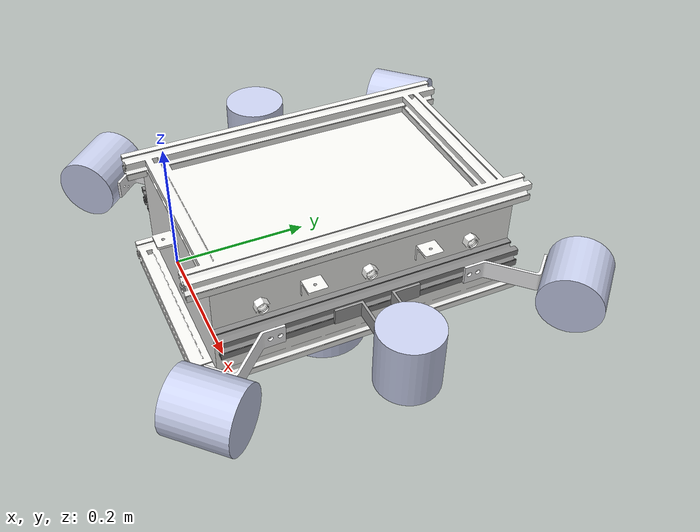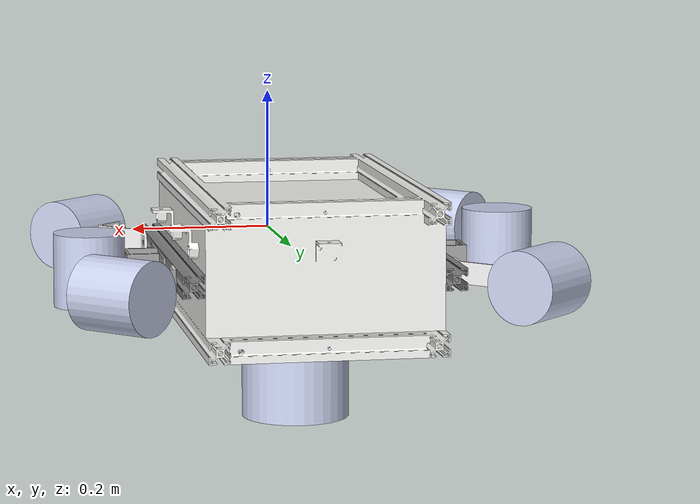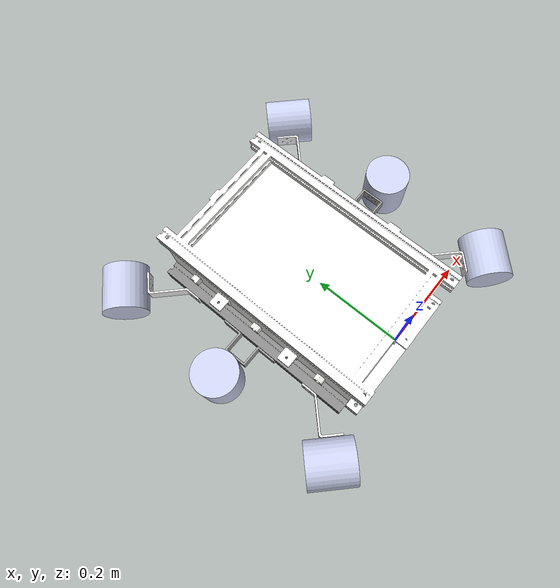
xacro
<?xml version="1.0" encoding="utf-8"?>

<robot
  name="auv">

  <link name="dummy"/>

  <link
    name="base_link">
    <inertial>
      <origin
        xyz="-2.6314E-05 0.235 -0.013828"
        rpy="0 0 0" />
      <mass
        value="6.8795" />
      <inertia
        ixx="0.16825"
        ixy="-6.6195E-09"
        ixz="6.8542E-08"
        iyy="0.084939"
        iyz="1.949E-08"
        izz="0.23517" />
    </inertial>
    <visual>
      <origin
        xyz="0 0 0"
        rpy="0 0 0" />
      <geometry>
        <mesh
          filename="package://auv_simulation/meshes/base_link.STL" />
      </geometry>
      <material
        name="">
        <color
          rgba="0.96471 0.96471 0.95294 1" />
      </material>
    </visual>
    <collision>
      <origin
        xyz="0 0 0"
        rpy="0 0 0" />
      <geometry>
        <mesh
          filename="package://auv_simulation/meshes/base_link_collision.STL" />
      </geometry>
    </collision>
  </link>

  <joint
	name="dummy_joint"
	type="fixed">
	<parent link="dummy"/>
	<child link="base_link"/>
	</joint>

  <link
    name="star_rail">
    <inertial>
      <origin
        xyz="-0.15977 0.002631 -0.23091"
        rpy="0 0 0" />
      <mass
        value="0.15121" />
      <inertia
        ixx="0.0027971"
        ixy="-1.7644E-07"
        ixz="6.1934E-20"
        iyy="0.0027973"
        iyz="-1.9729E-20"
        izz="2.7288E-05" />
    </inertial>
    <visual>
      <origin
        xyz="0 0 0"
        rpy="0 0 0" />
      <geometry>
        <mesh
          filename="package://auv_simulation/meshes/star_rail.STL" />
      </geometry>
      <material
        name="">
        <color
          rgba="0.53725 0.53725 0.53725 1" />
      </material>
    </visual>
    <collision>
      <origin
        xyz="0 0 0"
        rpy="0 0 0" />
      <geometry>
        <mesh
          filename="package://auv_simulation/meshes/star_rail_collision.STL" />
      </geometry>
    </collision>
  </link>
  <joint
    name="star_rail_joint"
    type="fixed">
    <origin
      xyz="-0.015202 0.0040911 -0.010109"
      rpy="1.5708 0 0" />
    <parent
      link="base_link" />
    <child
      link="star_rail" />
    <axis
      xyz="0 0 0" />
  </joint>
  <link
    name="thruster_4_mount">
    <inertial>
      <origin
        xyz="-0.21864 -0.0075071 -0.026361"
        rpy="0 0 0" />
      <mass
        value="0.018878" />
      <inertia
        ixx="2.3546E-05"
        ixy="-1.8162E-09"
        ixz="1.0134E-05"
        iyy="2.903E-05"
        iyz="5.6221E-09"
        izz="8.3832E-06" />
    </inertial>
    <visual>
      <origin
        xyz="0 0 0"
        rpy="0 0 0" />
      <geometry>
        <mesh
          filename="package://auv_simulation/meshes/thruster_4_mount.STL" />
      </geometry>
      <material
        name="">
        <color
          rgba="0.96078 0.96078 0.96471 1" />
      </material>
    </visual>
    <collision>
      <origin
        xyz="0 0 0"
        rpy="0 0 0" />
      <geometry>
        <mesh
          filename="package://auv_simulation/meshes/thruster_4_mount_collision.STL" />
      </geometry>
    </collision>
  </link>
  <joint
    name="thruster_4_mount_joint"
    type="fixed">
    <origin
      xyz="0.015202 0.010109 0.0040911"
      rpy="0 0 0" />
    <parent
      link="star_rail" />
    <child
      link="thruster_4_mount" />
    <axis
      xyz="0 0 0" />
  </joint>
  <link
    name="thruster_4">
    <inertial>
      <origin
        xyz="-0.27365 -0.0075011 0.045419"
        rpy="0 0 0" />
      <mass
        value="0.18769" />
      <inertia
        ixx="0.00015289"
        ixy="1.1979E-08"
        ixz="2.5584E-05"
        iyy="0.0001328"
        iyz="-1.7024E-08"
        izz="0.00015349" />
    </inertial>
    <visual>
      <origin
        xyz="0 0 0"
        rpy="0 0 0" />
      <geometry>
        <mesh
          filename="package://auv_simulation/meshes/thruster_4.STL" />
      </geometry>
      <material
        name="">
        <color
          rgba="0.79216 0.81961 0.93333 1" />
      </material>
    </visual>
    <collision>
      <origin
        xyz="0 0 0"
        rpy="0 0 0" />
      <geometry>
        <mesh
          filename="package://auv_simulation/meshes/thruster_4_collision.STL" />
      </geometry>
    </collision>
  </link>
  <joint
    name="thruster_4_joint"
    type="fixed">
    <origin
      xyz="0 0 0"
      rpy="0 0 0" />
    <parent
      link="thruster_4_mount" />
    <child
      link="thruster_4" />
    <axis
      xyz="0 0 0" />
  </joint>
  <link
    name="thruster_5_mount">
    <inertial>
      <origin
        xyz="-0.21025 -0.0075 -0.235"
        rpy="0 0 0" />
      <mass
        value="0.022113" />
      <inertia
        ixx="2.6949E-05"
        ixy="-9.44E-22"
        ixz="1.2218E-22"
        iyy="3.34E-05"
        iyz="-8.5444E-22"
        izz="8.7563E-06" />
    </inertial>
    <visual>
      <origin
        xyz="0 0 0"
        rpy="0 0 0" />
      <geometry>
        <mesh
          filename="package://auv_simulation/meshes/thruster_5_mount.STL" />
      </geometry>
      <material
        name="">
        <color
          rgba="0.62745 0.62745 0.62745 1" />
      </material>
    </visual>
    <collision>
      <origin
        xyz="0 0 0"
        rpy="0 0 0" />
      <geometry>
        <mesh
          filename="package://auv_simulation/meshes/thruster_5_mount_collision.STL" />
      </geometry>
    </collision>
  </link>
  <joint
    name="thruster_5_mount_joint"
    type="fixed">
    <origin
      xyz="0.015202 0.010109 0.0040911"
      rpy="0 0 0" />
    <parent
      link="star_rail" />
    <child
      link="thruster_5_mount" />
    <axis
      xyz="0 0 0" />
  </joint>
  <link
    name="thruster_5">
    <inertial>
      <origin
        xyz="-0.28662 0.0014508 -0.235"
        rpy="0 0 0" />
      <mass
        value="0.18772" />
      <inertia
        ixx="0.00012766"
        ixy="2.9909E-07"
        ixz="2.0474E-08"
        iyy="0.00017881"
        iyz="3.1171E-09"
        izz="0.00013285" />
    </inertial>
    <visual>
      <origin
        xyz="0 0 0"
        rpy="0 0 0" />
      <geometry>
        <mesh
          filename="package://auv_simulation/meshes/thruster_5.STL" />
      </geometry>
      <material
        name="">
        <color
          rgba="0.79216 0.81961 0.93333 1" />
      </material>
    </visual>
    <collision>
      <origin
        xyz="0 0 0"
        rpy="0 0 0" />
      <geometry>
        <mesh
          filename="package://auv_simulation/meshes/thruster_5_collision.STL" />
      </geometry>
    </collision>
  </link>
  <joint
    name="thruster_5_joint"
    type="fixed">
    <origin
      xyz="0 0 0"
      rpy="0 0 0" />
    <parent
      link="thruster_5_mount" />
    <child
      link="thruster_5" />
    <axis
      xyz="0 0 0" />
  </joint>
  <link
    name="thruster_6_mount">
    <inertial>
      <origin
        xyz="-0.218636116139921 -0.00749289403790487 -0.443639133336319"
        rpy="0 0 0" />
      <mass
        value="0.0188779917005725" />
      <inertia
        ixx="2.35464924155428E-05"
        ixy="1.8162061621199E-09"
        ixz="-1.0134265369623E-05"
        iyy="2.90296150829582E-05"
        iyz="5.62212207360044E-09"
        izz="8.38317442685659E-06" />
    </inertial>
    <visual>
      <origin
        xyz="0 0 0"
        rpy="0 0 0" />
      <geometry>
        <mesh
          filename="package://auv_simulation/meshes/thruster_6_mount.STL" />
      </geometry>
      <material
        name="">
        <color
          rgba="0.96078431372549 0.96078431372549 0.964705882352941 1" />
      </material>
    </visual>
    <collision>
      <origin
        xyz="0 0 0"
        rpy="0 0 0" />
      <geometry>
        <mesh
          filename="package://auv_simulation/meshes/thruster_6_mount_collision.STL" />
      </geometry>
    </collision>
  </link>
  <joint
    name="thruster_6_mount_joint"
    type="fixed">
    <origin
      xyz="0.015202 0.010109 0.0040911"
      rpy="0 0 0" />
    <parent
      link="star_rail" />
    <child
      link="thruster_6_mount" />
    <axis
      xyz="0 0 0" />
  </joint>
  <link
    name="thruster_6">
    <inertial>
      <origin
        xyz="-0.27365 -0.0074989 -0.51542"
        rpy="0 0 0" />
      <mass
        value="0.18769" />
      <inertia
        ixx="0.00015289"
        ixy="-1.1983E-08"
        ixz="-2.5582E-05"
        iyy="0.0001328"
        iyz="-1.702E-08"
        izz="0.00015349" />
    </inertial>
    <visual>
      <origin
        xyz="0 0 0"
        rpy="0 0 0" />
      <geometry>
        <mesh
          filename="package://auv_simulation/meshes/thruster_6.STL" />
      </geometry>
      <material
        name="">
        <color
          rgba="0.79216 0.81961 0.93333 1" />
      </material>
    </visual>
    <collision>
      <origin
        xyz="0 0 0"
        rpy="0 0 0" />
      <geometry>
        <mesh
          filename="package://auv_simulation/meshes/thruster_6_collision.STL" />
      </geometry>
    </collision>
  </link>
  <joint
    name="thruster_6_joint"
    type="fixed">
    <origin
      xyz="0 0 0"
      rpy="0 0 0" />
    <parent
      link="thruster_6_mount" />
    <child
      link="thruster_6" />
    <axis
      xyz="0 0 0" />
  </joint>
  <link
    name="port_rail">
    <inertial>
      <origin
        xyz="-0.1489 -0.010868 -0.061963"
        rpy="0 0 0" />
      <mass
        value="0.15121" />
      <inertia
        ixx="0.0027971"
        ixy="-1.7644E-07"
        ixz="-6.1966E-20"
        iyy="0.0027973"
        iyz="1.9723E-20"
        izz="2.7288E-05" />
    </inertial>
    <visual>
      <origin
        xyz="0 0 0"
        rpy="0 0 0" />
      <geometry>
        <mesh
          filename="package://auv_simulation/meshes/port_rail.STL" />
      </geometry>
      <material
        name="">
        <color
          rgba="0.53725 0.53725 0.53725 1" />
      </material>
    </visual>
    <collision>
      <origin
        xyz="0 0 0"
        rpy="0 0 0" />
      <geometry>
        <mesh
          filename="package://auv_simulation/meshes/port_rail_collision.STL" />
      </geometry>
    </collision>
  </link>
  <joint
    name="port_rail_joint"
    type="fixed">
    <origin
      xyz="0.32388 0.17304 0.0033462"
      rpy="1.5708 0 0" />
    <parent
      link="base_link" />
    <child
      link="port_rail" />
    <axis
      xyz="0 0 0" />
  </joint>
  <link
    name="thruster_1_mount">
    <inertial>
      <origin
        xyz="0.21864 -0.0074929 -0.026227"
        rpy="0 0 0" />
      <mass
        value="0.018878" />
      <inertia
        ixx="2.3546E-05"
        ixy="-1.8162E-09"
        ixz="-1.0134E-05"
        iyy="2.903E-05"
        iyz="-5.6221E-09"
        izz="8.3832E-06" />
    </inertial>
    <visual>
      <origin
        xyz="0 0 0"
        rpy="0 0 0" />
      <geometry>
        <mesh
          filename="package://auv_simulation/meshes/thruster_1_mount.STL" />
      </geometry>
      <material
        name="">
        <color
          rgba="0.96078 0.96078 0.96471 1" />
      </material>
    </visual>
    <collision>
      <origin
        xyz="0 0 0"
        rpy="0 0 0" />
      <geometry>
        <mesh
          filename="package://auv_simulation/meshes/thruster_1_mount_collision.STL" />
      </geometry>
    </collision>
  </link>
  <joint
    name="thruster_1_mount_joint"
    type="fixed">
    <origin
      xyz="-0.32388 -0.0033462 0.17304"
      rpy="0 0 0" />
    <parent
      link="port_rail" />
    <child
      link="thruster_1_mount" />
    <axis
      xyz="0 0 0" />
  </joint>
  <link
    name="thruster_1">
    <inertial>
      <origin
        xyz="0.27365 -0.0074989 0.045553"
        rpy="0 0 0" />
      <mass
        value="0.18769" />
      <inertia
        ixx="0.00015289"
        ixy="1.1988E-08"
        ixz="-2.5582E-05"
        iyy="0.0001328"
        iyz="1.7015E-08"
        izz="0.00015349" />
    </inertial>
    <visual>
      <origin
        xyz="0 0 0"
        rpy="0 0 0" />
      <geometry>
        <mesh
          filename="package://auv_simulation/meshes/thruster_1.STL" />
      </geometry>
      <material
        name="">
        <color
          rgba="0.79216 0.81961 0.93333 1" />
      </material>
    </visual>
    <collision>
      <origin
        xyz="0 0 0"
        rpy="0 0 0" />
      <geometry>
        <mesh
          filename="package://auv_simulation/meshes/thruster_1_collision.STL" />
      </geometry>
    </collision>
  </link>
  <joint
    name="thruster_1_joint"
    type="fixed">
    <origin
      xyz="0 0 0"
      rpy="0 0 0" />
    <parent
      link="thruster_1_mount" />
    <child
      link="thruster_1" />
    <axis
      xyz="0 0 0" />
  </joint>
  <link
    name="thruster_2_mount">
    <inertial>
      <origin
        xyz="0.210250945732009 -0.0075 -0.235"
        rpy="0 0 0" />
      <mass
        value="0.0221133852296083" />
      <inertia
        ixx="2.69494123301925E-05"
        ixy="7.75855424135227E-22"
        ixz="1.02286654303524E-20"
        iyy="3.33998602168454E-05"
        iyz="8.67733969672966E-22"
        izz="8.75632150273414E-06" />
    </inertial>
    <visual>
      <origin
        xyz="0 0 0"
        rpy="0 0 0" />
      <geometry>
        <mesh
          filename="package://auv_simulation/meshes/thruster_2_mount.STL" />
      </geometry>
      <material
        name="">
        <color
          rgba="0.627450980392157 0.627450980392157 0.627450980392157 1" />
      </material>
    </visual>
    <collision>
      <origin
        xyz="0 0 0"
        rpy="0 0 0" />
      <geometry>
        <mesh
          filename="package://auv_simulation/meshes/thruster_2_mount_collision.STL" />
      </geometry>
    </collision>
  </link>
  <joint
    name="thruster_2_mount_joint"
    type="fixed">
    <origin
      xyz="-0.32388 -0.0033462 0.17304"
      rpy="0 0 0" />
    <parent
      link="port_rail" />
    <child
      link="thruster_2_mount" />
    <axis
      xyz="0 0 0" />
  </joint>
  <link
    name="thruster_2">
    <inertial>
      <origin
        xyz="0.28662 -0.016451 -0.235"
        rpy="0 0 0" />
      <mass
        value="0.18772" />
      <inertia
        ixx="0.00012766"
        ixy="2.9909E-07"
        ixz="-2.0474E-08"
        iyy="0.00017881"
        iyz="-3.1091E-09"
        izz="0.00013285" />
    </inertial>
    <visual>
      <origin
        xyz="0 0 0"
        rpy="0 0 0" />
      <geometry>
        <mesh
          filename="package://auv_simulation/meshes/thruster_2.STL" />
      </geometry>
      <material
        name="">
        <color
          rgba="0.79216 0.81961 0.93333 1" />
      </material>
    </visual>
    <collision>
      <origin
        xyz="0 0 0"
        rpy="0 0 0" />
      <geometry>
        <mesh
          filename="package://auv_simulation/meshes/thruster_2_collision.STL" />
      </geometry>
    </collision>
  </link>
  <joint
    name="thruster_2_joint"
    type="fixed">
    <origin
      xyz="0 0 0"
      rpy="0 0 0" />
    <parent
      link="thruster_2_mount" />
    <child
      link="thruster_2" />
    <axis
      xyz="0 0 0" />
  </joint>
  <link
    name="thruster_3_mount">
    <inertial>
      <origin
        xyz="0.21864 -0.0075071 -0.44364"
        rpy="0 0 0" />
      <mass
        value="0.018878" />
      <inertia
        ixx="2.3546E-05"
        ixy="1.8162E-09"
        ixz="1.0134E-05"
        iyy="2.903E-05"
        iyz="-5.6221E-09"
        izz="8.3832E-06" />
    </inertial>
    <visual>
      <origin
        xyz="0 0 0"
        rpy="0 0 0" />
      <geometry>
        <mesh
          filename="package://auv_simulation/meshes/thruster_3_mount.STL" />
      </geometry>
      <material
        name="">
        <color
          rgba="0.96078 0.96078 0.96471 1" />
      </material>
    </visual>
    <collision>
      <origin
        xyz="0 0 0"
        rpy="0 0 0" />
      <geometry>
        <mesh
          filename="package://auv_simulation/meshes/thruster_3_mount_collision.STL" />
      </geometry>
    </collision>
  </link>
  <joint
    name="thruster_3_mount_joint"
    type="fixed">
    <origin
      xyz="-0.32388 -0.0033462 0.17304"
      rpy="0 0 0" />
    <parent
      link="port_rail" />
    <child
      link="thruster_3_mount" />
    <axis
      xyz="0 0 0" />
  </joint>
  <link
    name="thruster_3">
    <inertial>
      <origin
        xyz="0.27365 -0.0075011 -0.51542"
        rpy="0 0 0" />
      <mass
        value="0.18769" />
      <inertia
        ixx="0.00015289"
        ixy="-1.1979E-08"
        ixz="2.5582E-05"
        iyy="0.0001328"
        iyz="1.7024E-08"
        izz="0.00015349" />
    </inertial>
    <visual>
      <origin
        xyz="0 0 0"
        rpy="0 0 0" />
      <geometry>
        <mesh
          filename="package://auv_simulation/meshes/thruster_3.STL" />
      </geometry>
      <material
        name="">
        <color
          rgba="0.79216 0.81961 0.93333 1" />
      </material>
    </visual>
    <collision>
      <origin
        xyz="0 0 0"
        rpy="0 0 0" />
      <geometry>
        <mesh
          filename="package://auv_simulation/meshes/thruster_3_collision.STL" />
      </geometry>
    </collision>
  </link>
  <joint
    name="thruster_3_joint"
    type="fixed">
    <origin
      xyz="0 0 0"
      rpy="0 0 0" />
    <parent
      link="thruster_3_mount" />
    <child
      link="thruster_3" />
    <axis
      xyz="0 0 0" />
  </joint>

 <link
    name="weight">
    <inertial>
      <origin
        xyz="-3.151E-50 -0.1575 -0.235"
        rpy="0 0 0" />
      <mass
        value="50.6507" />
      <inertia
        ixx="0.0086977"
        ixy="2.8814E-35"
        ixz="-2.8472E-35"
        iyy="0.0074551"
        iyz="-1.2852E-35"
        izz="0.0086977" />
    </inertial>
    <visual>
      <origin
        xyz="0 0 0"
        rpy="0 0 0" />
      <geometry>
        <mesh
          filename="package://auv_simulation/meshes/weight.STL" />
      </geometry>
      <material
        name="">
        <color
          rgba="0.79216 0.81961 0.93333 1" />
      </material>
    </visual>
    <collision>
      <origin
        xyz="0 0 0"
        rpy="0 0 0" />
      <geometry>
        <mesh
          filename="package://auv_simulation/meshes/weight.STL" />
      </geometry>
    </collision>
  </link>

  <joint
    name="weight_joint"
    type="fixed">
    <origin
      xyz="0 0 0"
      rpy="1.5708 0 0" />
    <parent
      link="base_link" />
    <child
      link="weight" />
    <axis
      xyz="0 0 0" />
  </joint>

		<gazebo>
			<plugin name="freebuoyancy_gazebo" filename="libfreebuoyancy_gazebo.so">
			  <descriptionParam>robot_description</descriptionParam>
			  <fluidTopic>current</fluidTopic>
			  <alwaysOn>true</alwaysOn>
			  <surface>0 0 -0.1</surface>
			  <updateRate>.001</updateRate>

			  <link name="dummy">
					<buoyancy>
					<compensation>1.01</compensation>
						<origin xyz="-2.6314E-05 0.235 -0.013828"/>
					</buoyancy>
				</link>
			</plugin>
		</gazebo>

</robot>
